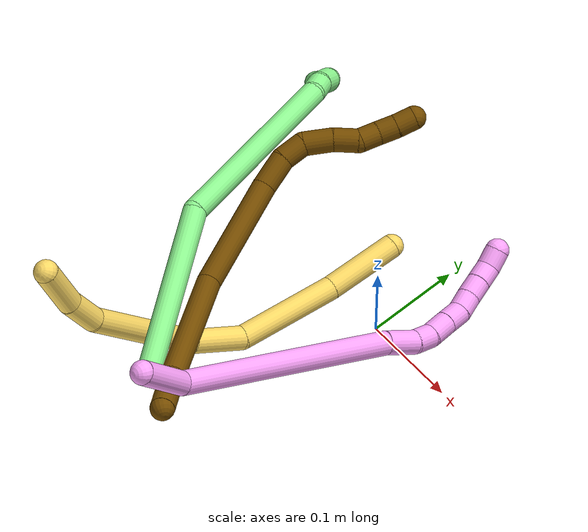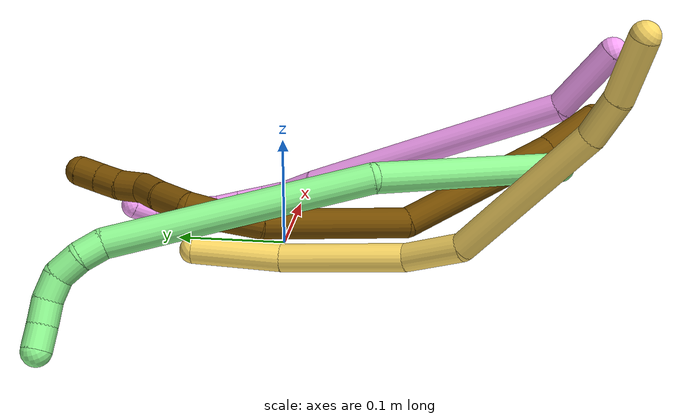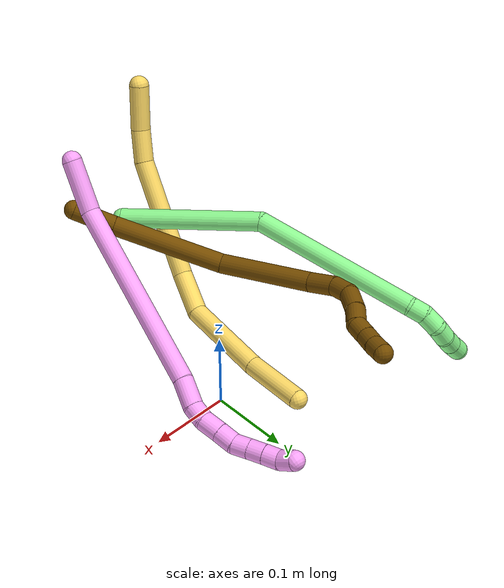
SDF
<sdf version="1.7">
 <world name="default">
  <model name="4">
   <static>0</static>
   <link name="4">
    <collision name="collision-cylinder-e_1_1_4">
     <pose>-0.010887 -0.010721 -0.030058 2.79899 -0.328781 -1.52884</pose>
     <geometry><cylinder><radius>0.0125</radius><length>0.067436</length></cylinder></geometry>
     <surface>
      <friction><ode><mu>1.16</mu><mu2>1.16</mu2><slip1>0</slip1><slip2>0</slip2></ode></friction>
      <contact><ode><kp>1e+06</kp><kd>1</kd><max_vel>0</max_vel><min_depth>0.001</min_depth></ode></contact>
     </surface>
    </collision>
    <visual name="visual-cylinder-e_1_1_4">
     <pose>-0.010887 -0.010721 -0.030058 2.79899 -0.328781 -1.52884</pose>
     <geometry><cylinder><radius>0.0125</radius><length>0.067436</length></cylinder></geometry>
     <material><ambient>1 0.65098 0.996078 1</ambient></material>
    </visual>
    <collision name="collision-cylinder-e_2_4_5">
     <pose>-0.0119 -0.029822 -0.183662 3.07386 0.079571 1.73135</pose>
     <geometry><cylinder><radius>0.0125</radius><length>0.248449</length></cylinder></geometry>
     <surface>
      <friction><ode><mu>1.16</mu><mu2>1.16</mu2><slip1>0</slip1><slip2>0</slip2></ode></friction>
      <contact><ode><kp>1e+06</kp><kd>1</kd><max_vel>0</max_vel><min_depth>0.001</min_depth></ode></contact>
     </surface>
    </collision>
    <visual name="visual-cylinder-e_2_4_5">
     <pose>-0.0119 -0.029822 -0.183662 3.07386 0.079571 1.73135</pose>
     <geometry><cylinder><radius>0.0125</radius><length>0.248449</length></cylinder></geometry>
     <material><ambient>1 0.65098 0.996078 1</ambient></material>
    </visual>
    <collision name="collision-cylinder-e_3_5_6">
     <pose>-0.000458 -0.041844 -0.324581 2.935 0.088127 0.804312</pose>
     <geometry><cylinder><radius>0.0125</radius><length>0.035636</length></cylinder></geometry>
     <surface>
      <friction><ode><mu>1.16</mu><mu2>1.16</mu2><slip1>0</slip1><slip2>0</slip2></ode></friction>
      <contact><ode><kp>1e+06</kp><kd>1</kd><max_vel>0</max_vel><min_depth>0.001</min_depth></ode></contact>
     </surface>
    </collision>
    <visual name="visual-cylinder-e_3_5_6">
     <pose>-0.000458 -0.041844 -0.324581 2.935 0.088127 0.804312</pose>
     <geometry><cylinder><radius>0.0125</radius><length>0.035636</length></cylinder></geometry>
     <material><ambient>1 0.65098 0.996078 1</ambient></material>
    </visual>
    <collision name="collision-cylinder-e_4_6_7">
     <pose>0.002196 -0.044536 -0.352341 -3.05053 0.103728 -1.70081</pose>
     <geometry><cylinder><radius>0.0125</radius><length>0.020975</length></cylinder></geometry>
     <surface>
      <friction><ode><mu>1.16</mu><mu2>1.16</mu2><slip1>0</slip1><slip2>0</slip2></ode></friction>
      <contact><ode><kp>1e+06</kp><kd>1</kd><max_vel>0</max_vel><min_depth>0.001</min_depth></ode></contact>
     </surface>
    </collision>
    <visual name="visual-cylinder-e_4_6_7">
     <pose>0.002196 -0.044536 -0.352341 -3.05053 0.103728 -1.70081</pose>
     <geometry><cylinder><radius>0.0125</radius><length>0.020975</length></cylinder></geometry>
     <material><ambient>1 0.65098 0.996078 1</ambient></material>
    </visual>
    <collision name="collision-cylinder-e_5_7_8">
     <pose>0.003554 -0.039564 -0.374401 -2.80967 0.022036 -0.131374</pose>
     <geometry><cylinder><radius>0.0125</radius><length>0.024698</length></cylinder></geometry>
     <surface>
      <friction><ode><mu>1.16</mu><mu2>1.16</mu2><slip1>0</slip1><slip2>0</slip2></ode></friction>
      <contact><ode><kp>1e+06</kp><kd>1</kd><max_vel>0</max_vel><min_depth>0.001</min_depth></ode></contact>
     </surface>
    </collision>
    <visual name="visual-cylinder-e_5_7_8">
     <pose>0.003554 -0.039564 -0.374401 -2.80967 0.022036 -0.131374</pose>
     <geometry><cylinder><radius>0.0125</radius><length>0.024698</length></cylinder></geometry>
     <material><ambient>1 0.65098 0.996078 1</ambient></material>
    </visual>
    <collision name="collision-cylinder-e_6_8_9">
     <pose>0.00405 -0.03216 -0.396709 -2.83381 0.020064 -0.129172</pose>
     <geometry><cylinder><radius>0.0125</radius><length>0.022324</length></cylinder></geometry>
     <surface>
      <friction><ode><mu>1.16</mu><mu2>1.16</mu2><slip1>0</slip1><slip2>0</slip2></ode></friction>
      <contact><ode><kp>1e+06</kp><kd>1</kd><max_vel>0</max_vel><min_depth>0.001</min_depth></ode></contact>
     </surface>
    </collision>
    <visual name="visual-cylinder-e_6_8_9">
     <pose>0.00405 -0.03216 -0.396709 -2.83381 0.020064 -0.129172</pose>
     <geometry><cylinder><radius>0.0125</radius><length>0.022324</length></cylinder></geometry>
     <material><ambient>1 0.65098 0.996078 1</ambient></material>
    </visual>
    <collision name="collision-cylinder-e_7_9_10">
     <pose>0.004694 -0.022697 -0.415469 -2.499 0.041338 -0.12406</pose>
     <geometry><cylinder><radius>0.0125</radius><length>0.020315</length></cylinder></geometry>
     <surface>
      <friction><ode><mu>1.16</mu><mu2>1.16</mu2><slip1>0</slip1><slip2>0</slip2></ode></friction>
      <contact><ode><kp>1e+06</kp><kd>1</kd><max_vel>0</max_vel><min_depth>0.001</min_depth></ode></contact>
     </surface>
    </collision>
    <visual name="visual-cylinder-e_7_9_10">
     <pose>0.004694 -0.022697 -0.415469 -2.499 0.041338 -0.12406</pose>
     <geometry><cylinder><radius>0.0125</radius><length>0.020315</length></cylinder></geometry>
     <material><ambient>1 0.65098 0.996078 1</ambient></material>
    </visual>
    <collision name="collision-cylinder-e_8_10_11">
     <pose>0.006197 -0.01069 -0.431677 -2.50899 0.107691 -0.326427</pose>
     <geometry><cylinder><radius>0.0125</radius><length>0.020162</length></cylinder></geometry>
     <surface>
      <friction><ode><mu>1.16</mu><mu2>1.16</mu2><slip1>0</slip1><slip2>0</slip2></ode></friction>
      <contact><ode><kp>1e+06</kp><kd>1</kd><max_vel>0</max_vel><min_depth>0.001</min_depth></ode></contact>
     </surface>
    </collision>
    <visual name="visual-cylinder-e_8_10_11">
     <pose>0.006197 -0.01069 -0.431677 -2.50899 0.107691 -0.326427</pose>
     <geometry><cylinder><radius>0.0125</radius><length>0.020162</length></cylinder></geometry>
     <material><ambient>1 0.65098 0.996078 1</ambient></material>
    </visual>
    <collision name="collision-cylinder-e_9_11_12">
     <pose>0.008098 0.000969 -0.447913 -2.52875 0.081751 -0.25711</pose>
     <geometry><cylinder><radius>0.0125</radius><length>0.020001</length></cylinder></geometry>
     <surface>
      <friction><ode><mu>1.16</mu><mu2>1.16</mu2><slip1>0</slip1><slip2>0</slip2></ode></friction>
      <contact><ode><kp>1e+06</kp><kd>1</kd><max_vel>0</max_vel><min_depth>0.001</min_depth></ode></contact>
     </surface>
    </collision>
    <visual name="visual-cylinder-e_9_11_12">
     <pose>0.008098 0.000969 -0.447913 -2.52875 0.081751 -0.25711</pose>
     <geometry><cylinder><radius>0.0125</radius><length>0.020001</length></cylinder></geometry>
     <material><ambient>1 0.65098 0.996078 1</ambient></material>
    </visual>
    <collision name="collision-cylinder-e_10_12_2">
     <pose>0.012447 0.014094 -0.461804 -2.23084 0.361027 -0.713463</pose>
     <geometry><cylinder><radius>0.0125</radius><length>0.020002</length></cylinder></geometry>
     <surface>
      <friction><ode><mu>1.16</mu><mu2>1.16</mu2><slip1>0</slip1><slip2>0</slip2></ode></friction>
      <contact><ode><kp>1e+06</kp><kd>1</kd><max_vel>0</max_vel><min_depth>0.001</min_depth></ode></contact>
     </surface>
    </collision>
    <visual name="visual-cylinder-e_10_12_2">
     <pose>0.012447 0.014094 -0.461804 -2.23084 0.361027 -0.713463</pose>
     <geometry><cylinder><radius>0.0125</radius><length>0.020002</length></cylinder></geometry>
     <material><ambient>1 0.65098 0.996078 1</ambient></material>
    </visual>
    <collision name="collision-sphere-2">
     <pose>0.01598 0.021485 -0.467541 0 -0 0</pose>
     <geometry><sphere><radius>0.0125</radius></sphere></geometry>
     <surface>
      <friction><ode><mu>1.16</mu><mu2>1.16</mu2><slip1>0</slip1><slip2>0</slip2></ode></friction>
      <contact><ode><kp>1e+06</kp><kd>1</kd><max_vel>0</max_vel><min_depth>0.001</min_depth></ode></contact>
     </surface>
    </collision>
    <visual name="visual-sphere-2">
     <pose>0.01598 0.021485 -0.467541 0 -0 0</pose>
     <geometry><sphere><radius>0.0125</radius></sphere></geometry>
     <material><ambient>1 0.65098 0.996078 1</ambient></material>
    </visual>
    <collision name="collision-sphere-12">
     <pose>0.008914 0.006703 -0.456067 0 -0 0</pose>
     <geometry><sphere><radius>0.0125</radius></sphere></geometry>
     <surface>
      <friction><ode><mu>1.16</mu><mu2>1.16</mu2><slip1>0</slip1><slip2>0</slip2></ode></friction>
      <contact><ode><kp>1e+06</kp><kd>1</kd><max_vel>0</max_vel><min_depth>0.001</min_depth></ode></contact>
     </surface>
    </collision>
    <visual name="visual-sphere-12">
     <pose>0.008914 0.006703 -0.456067 0 -0 0</pose>
     <geometry><sphere><radius>0.0125</radius></sphere></geometry>
     <material><ambient>1 0.65098 0.996078 1</ambient></material>
    </visual>
    <collision name="collision-sphere-11">
     <pose>0.007281 -0.004764 -0.43976 0 -0 0</pose>
     <geometry><sphere><radius>0.0125</radius></sphere></geometry>
     <surface>
      <friction><ode><mu>1.16</mu><mu2>1.16</mu2><slip1>0</slip1><slip2>0</slip2></ode></friction>
      <contact><ode><kp>1e+06</kp><kd>1</kd><max_vel>0</max_vel><min_depth>0.001</min_depth></ode></contact>
     </surface>
    </collision>
    <visual name="visual-sphere-11">
     <pose>0.007281 -0.004764 -0.43976 0 -0 0</pose>
     <geometry><sphere><radius>0.0125</radius></sphere></geometry>
     <material><ambient>1 0.65098 0.996078 1</ambient></material>
    </visual>
    <collision name="collision-sphere-10">
     <pose>0.005114 -0.016615 -0.423594 0 -0 0</pose>
     <geometry><sphere><radius>0.0125</radius></sphere></geometry>
     <surface>
      <friction><ode><mu>1.16</mu><mu2>1.16</mu2><slip1>0</slip1><slip2>0</slip2></ode></friction>
      <contact><ode><kp>1e+06</kp><kd>1</kd><max_vel>0</max_vel><min_depth>0.001</min_depth></ode></contact>
     </surface>
    </collision>
    <visual name="visual-sphere-10">
     <pose>0.005114 -0.016615 -0.423594 0 -0 0</pose>
     <geometry><sphere><radius>0.0125</radius></sphere></geometry>
     <material><ambient>1 0.65098 0.996078 1</ambient></material>
    </visual>
    <collision name="collision-sphere-9">
     <pose>0.004274 -0.028779 -0.407344 0 -0 0</pose>
     <geometry><sphere><radius>0.0125</radius></sphere></geometry>
     <surface>
      <friction><ode><mu>1.16</mu><mu2>1.16</mu2><slip1>0</slip1><slip2>0</slip2></ode></friction>
      <contact><ode><kp>1e+06</kp><kd>1</kd><max_vel>0</max_vel><min_depth>0.001</min_depth></ode></contact>
     </surface>
    </collision>
    <visual name="visual-sphere-9">
     <pose>0.004274 -0.028779 -0.407344 0 -0 0</pose>
     <geometry><sphere><radius>0.0125</radius></sphere></geometry>
     <material><ambient>1 0.65098 0.996078 1</ambient></material>
    </visual>
    <collision name="collision-sphere-4">
     <pose>-0.021775 -0.021441 -0.060115 0 -0 0</pose>
     <geometry><sphere><radius>0.0125</radius></sphere></geometry>
     <surface>
      <friction><ode><mu>1.16</mu><mu2>1.16</mu2><slip1>0</slip1><slip2>0</slip2></ode></friction>
      <contact><ode><kp>1e+06</kp><kd>1</kd><max_vel>0</max_vel><min_depth>0.001</min_depth></ode></contact>
     </surface>
    </collision>
    <visual name="visual-sphere-4">
     <pose>-0.021775 -0.021441 -0.060115 0 -0 0</pose>
     <geometry><sphere><radius>0.0125</radius></sphere></geometry>
     <material><ambient>1 0.65098 0.996078 1</ambient></material>
    </visual>
    <collision name="collision-sphere-1">
     <geometry><sphere><radius>0.0125</radius></sphere></geometry>
     <surface>
      <friction><ode><mu>1.16</mu><mu2>1.16</mu2><slip1>0</slip1><slip2>0</slip2></ode></friction>
      <contact><ode><kp>1e+06</kp><kd>1</kd><max_vel>0</max_vel><min_depth>0.001</min_depth></ode></contact>
     </surface>
    </collision>
    <visual name="visual-sphere-1">
     <geometry><sphere><radius>0.0125</radius></sphere></geometry>
     <material><ambient>1 0.65098 0.996078 1</ambient></material>
    </visual>
    <collision name="collision-sphere-8">
     <pose>0.003827 -0.035541 -0.386074 0 -0 0</pose>
     <geometry><sphere><radius>0.0125</radius></sphere></geometry>
     <surface>
      <friction><ode><mu>1.16</mu><mu2>1.16</mu2><slip1>0</slip1><slip2>0</slip2></ode></friction>
      <contact><ode><kp>1e+06</kp><kd>1</kd><max_vel>0</max_vel><min_depth>0.001</min_depth></ode></contact>
     </surface>
    </collision>
    <visual name="visual-sphere-8">
     <pose>0.003827 -0.035541 -0.386074 0 -0 0</pose>
     <geometry><sphere><radius>0.0125</radius></sphere></geometry>
     <material><ambient>1 0.65098 0.996078 1</ambient></material>
    </visual>
    <collision name="collision-sphere-5">
     <pose>-0.002026 -0.038203 -0.30721 0 -0 0</pose>
     <geometry><sphere><radius>0.0125</radius></sphere></geometry>
     <surface>
      <friction><ode><mu>1.16</mu><mu2>1.16</mu2><slip1>0</slip1><slip2>0</slip2></ode></friction>
      <contact><ode><kp>1e+06</kp><kd>1</kd><max_vel>0</max_vel><min_depth>0.001</min_depth></ode></contact>
     </surface>
    </collision>
    <visual name="visual-sphere-5">
     <pose>-0.002026 -0.038203 -0.30721 0 -0 0</pose>
     <geometry><sphere><radius>0.0125</radius></sphere></geometry>
     <material><ambient>1 0.65098 0.996078 1</ambient></material>
    </visual>
    <collision name="collision-sphere-6">
     <pose>0.001111 -0.045484 -0.341953 0 -0 0</pose>
     <geometry><sphere><radius>0.0125</radius></sphere></geometry>
     <surface>
      <friction><ode><mu>1.16</mu><mu2>1.16</mu2><slip1>0</slip1><slip2>0</slip2></ode></friction>
      <contact><ode><kp>1e+06</kp><kd>1</kd><max_vel>0</max_vel><min_depth>0.001</min_depth></ode></contact>
     </surface>
    </collision>
    <visual name="visual-sphere-6">
     <pose>0.001111 -0.045484 -0.341953 0 -0 0</pose>
     <geometry><sphere><radius>0.0125</radius></sphere></geometry>
     <material><ambient>1 0.65098 0.996078 1</ambient></material>
    </visual>
    <collision name="collision-sphere-7">
     <pose>0.003282 -0.043587 -0.362729 0 -0 0</pose>
     <geometry><sphere><radius>0.0125</radius></sphere></geometry>
     <surface>
      <friction><ode><mu>1.16</mu><mu2>1.16</mu2><slip1>0</slip1><slip2>0</slip2></ode></friction>
      <contact><ode><kp>1e+06</kp><kd>1</kd><max_vel>0</max_vel><min_depth>0.001</min_depth></ode></contact>
     </surface>
    </collision>
    <visual name="visual-sphere-7">
     <pose>0.003282 -0.043587 -0.362729 0 -0 0</pose>
     <geometry><sphere><radius>0.0125</radius></sphere></geometry>
     <material><ambient>1 0.65098 0.996078 1</ambient></material>
    </visual>
    <inertial>
     <pose>-0.005703 -0.025256 -0.240116 0 -0 0</pose>
     <mass>0.5</mass>
     <inertia><ixx>0.00105</ixx><ixy>0</ixy><ixz>0</ixz><iyy>0.001445</iyy><iyz>0</iyz><izz>-4e-05</izz></inertia>
    </inertial>
   </link>
   <pose>-0.020077 -0.285809 0.197625 0.904412 -0.813708 0.408041</pose>
  </model>
  <model name="5">
   <static>0</static>
   <link name="5">
    <collision name="collision-cylinder-e_1_1_4">
     <pose>0.00179 -0.01063 -0.02643 2.75921 0.062744 0.321475</pose>
     <geometry><cylinder><radius>0.0125</radius><length>0.057088</length></cylinder></geometry>
     <surface>
      <friction><ode><mu>1.16</mu><mu2>1.16</mu2><slip1>0</slip1><slip2>0</slip2></ode></friction>
      <contact><ode><kp>1e+06</kp><kd>1</kd><max_vel>0</max_vel><min_depth>0.001</min_depth></ode></contact>
     </surface>
    </collision>
    <visual name="visual-cylinder-e_1_1_4">
     <pose>0.00179 -0.01063 -0.02643 2.75921 0.062744 0.321475</pose>
     <geometry><cylinder><radius>0.0125</radius><length>0.057088</length></cylinder></geometry>
     <material><ambient>1 0.858824 0.4 1</ambient></material>
    </visual>
    <collision name="collision-cylinder-e_2_4_5">
     <pose>0.006028 -0.025174 -0.073227 2.95171 0.117496 1.10655</pose>
     <geometry><cylinder><radius>0.0125</radius><length>0.041766</length></cylinder></geometry>
     <surface>
      <friction><ode><mu>1.16</mu><mu2>1.16</mu2><slip1>0</slip1><slip2>0</slip2></ode></friction>
      <contact><ode><kp>1e+06</kp><kd>1</kd><max_vel>0</max_vel><min_depth>0.001</min_depth></ode></contact>
     </surface>
    </collision>
    <visual name="visual-cylinder-e_2_4_5">
     <pose>0.006028 -0.025174 -0.073227 2.95171 0.117496 1.10655</pose>
     <geometry><cylinder><radius>0.0125</radius><length>0.041766</length></cylinder></geometry>
     <material><ambient>1 0.858824 0.4 1</ambient></material>
    </visual>
    <collision name="collision-cylinder-e_3_5_6">
     <pose>0.009022 -0.024655 -0.169612 -3.08334 0.007178 -0.24515</pose>
     <geometry><cylinder><radius>0.0125</radius><length>0.1523</length></cylinder></geometry>
     <surface>
      <friction><ode><mu>1.16</mu><mu2>1.16</mu2><slip1>0</slip1><slip2>0</slip2></ode></friction>
      <contact><ode><kp>1e+06</kp><kd>1</kd><max_vel>0</max_vel><min_depth>0.001</min_depth></ode></contact>
     </surface>
    </collision>
    <visual name="visual-cylinder-e_3_5_6">
     <pose>0.009022 -0.024655 -0.169612 -3.08334 0.007178 -0.24515</pose>
     <geometry><cylinder><radius>0.0125</radius><length>0.1523</length></cylinder></geometry>
     <material><ambient>1 0.858824 0.4 1</ambient></material>
    </visual>
    <collision name="collision-cylinder-e_4_6_7">
     <pose>0.015756 -0.007509 -0.270374 -2.66696 0.218839 -0.852672</pose>
     <geometry><cylinder><radius>0.0125</radius><length>0.056996</length></cylinder></geometry>
     <surface>
      <friction><ode><mu>1.16</mu><mu2>1.16</mu2><slip1>0</slip1><slip2>0</slip2></ode></friction>
      <contact><ode><kp>1e+06</kp><kd>1</kd><max_vel>0</max_vel><min_depth>0.001</min_depth></ode></contact>
     </surface>
    </collision>
    <visual name="visual-cylinder-e_4_6_7">
     <pose>0.015756 -0.007509 -0.270374 -2.66696 0.218839 -0.852672</pose>
     <geometry><cylinder><radius>0.0125</radius><length>0.056996</length></cylinder></geometry>
     <material><ambient>1 0.858824 0.4 1</ambient></material>
    </visual>
    <collision name="collision-cylinder-e_5_7_8">
     <pose>0.021157 0.045808 -0.333632 -2.32981 -0.014033 0.032651</pose>
     <geometry><cylinder><radius>0.0125</radius><length>0.11194</length></cylinder></geometry>
     <surface>
      <friction><ode><mu>1.16</mu><mu2>1.16</mu2><slip1>0</slip1><slip2>0</slip2></ode></friction>
      <contact><ode><kp>1e+06</kp><kd>1</kd><max_vel>0</max_vel><min_depth>0.001</min_depth></ode></contact>
     </surface>
    </collision>
    <visual name="visual-cylinder-e_5_7_8">
     <pose>0.021157 0.045808 -0.333632 -2.32981 -0.014033 0.032651</pose>
     <geometry><cylinder><radius>0.0125</radius><length>0.11194</length></cylinder></geometry>
     <material><ambient>1 0.858824 0.4 1</ambient></material>
    </visual>
    <collision name="collision-cylinder-e_6_8_2">
     <pose>0.01919 0.118492 -0.395934 -2.20879 -0.029583 0.058749</pose>
     <geometry><cylinder><radius>0.0125</radius><length>0.079911</length></cylinder></geometry>
     <surface>
      <friction><ode><mu>1.16</mu><mu2>1.16</mu2><slip1>0</slip1><slip2>0</slip2></ode></friction>
      <contact><ode><kp>1e+06</kp><kd>1</kd><max_vel>0</max_vel><min_depth>0.001</min_depth></ode></contact>
     </surface>
    </collision>
    <visual name="visual-cylinder-e_6_8_2">
     <pose>0.01919 0.118492 -0.395934 -2.20879 -0.029583 0.058749</pose>
     <geometry><cylinder><radius>0.0125</radius><length>0.079911</length></cylinder></geometry>
     <material><ambient>1 0.858824 0.4 1</ambient></material>
    </visual>
    <collision name="collision-sphere-2">
     <pose>0.018008 0.150574 -0.419721 0 -0 0</pose>
     <geometry><sphere><radius>0.0125</radius></sphere></geometry>
     <surface>
      <friction><ode><mu>1.16</mu><mu2>1.16</mu2><slip1>0</slip1><slip2>0</slip2></ode></friction>
      <contact><ode><kp>1e+06</kp><kd>1</kd><max_vel>0</max_vel><min_depth>0.001</min_depth></ode></contact>
     </surface>
    </collision>
    <visual name="visual-sphere-2">
     <pose>0.018008 0.150574 -0.419721 0 -0 0</pose>
     <geometry><sphere><radius>0.0125</radius></sphere></geometry>
     <material><ambient>1 0.858824 0.4 1</ambient></material>
    </visual>
    <collision name="collision-sphere-4">
     <pose>0.00358 -0.021259 -0.052861 0 -0 0</pose>
     <geometry><sphere><radius>0.0125</radius></sphere></geometry>
     <surface>
      <friction><ode><mu>1.16</mu><mu2>1.16</mu2><slip1>0</slip1><slip2>0</slip2></ode></friction>
      <contact><ode><kp>1e+06</kp><kd>1</kd><max_vel>0</max_vel><min_depth>0.001</min_depth></ode></contact>
     </surface>
    </collision>
    <visual name="visual-sphere-4">
     <pose>0.00358 -0.021259 -0.052861 0 -0 0</pose>
     <geometry><sphere><radius>0.0125</radius></sphere></geometry>
     <material><ambient>1 0.858824 0.4 1</ambient></material>
    </visual>
    <collision name="collision-sphere-1">
     <geometry><sphere><radius>0.0125</radius></sphere></geometry>
     <surface>
      <friction><ode><mu>1.16</mu><mu2>1.16</mu2><slip1>0</slip1><slip2>0</slip2></ode></friction>
      <contact><ode><kp>1e+06</kp><kd>1</kd><max_vel>0</max_vel><min_depth>0.001</min_depth></ode></contact>
     </surface>
    </collision>
    <visual name="visual-sphere-1">
     <geometry><sphere><radius>0.0125</radius></sphere></geometry>
     <material><ambient>1 0.858824 0.4 1</ambient></material>
    </visual>
    <collision name="collision-sphere-8">
     <pose>0.020372 0.086411 -0.372147 0 -0 0</pose>
     <geometry><sphere><radius>0.0125</radius></sphere></geometry>
     <surface>
      <friction><ode><mu>1.16</mu><mu2>1.16</mu2><slip1>0</slip1><slip2>0</slip2></ode></friction>
      <contact><ode><kp>1e+06</kp><kd>1</kd><max_vel>0</max_vel><min_depth>0.001</min_depth></ode></contact>
     </surface>
    </collision>
    <visual name="visual-sphere-8">
     <pose>0.020372 0.086411 -0.372147 0 -0 0</pose>
     <geometry><sphere><radius>0.0125</radius></sphere></geometry>
     <material><ambient>1 0.858824 0.4 1</ambient></material>
    </visual>
    <collision name="collision-sphere-5">
     <pose>0.008476 -0.029088 -0.093593 0 -0 0</pose>
     <geometry><sphere><radius>0.0125</radius></sphere></geometry>
     <surface>
      <friction><ode><mu>1.16</mu><mu2>1.16</mu2><slip1>0</slip1><slip2>0</slip2></ode></friction>
      <contact><ode><kp>1e+06</kp><kd>1</kd><max_vel>0</max_vel><min_depth>0.001</min_depth></ode></contact>
     </surface>
    </collision>
    <visual name="visual-sphere-5">
     <pose>0.008476 -0.029088 -0.093593 0 -0 0</pose>
     <geometry><sphere><radius>0.0125</radius></sphere></geometry>
     <material><ambient>1 0.858824 0.4 1</ambient></material>
    </visual>
    <collision name="collision-sphere-6">
     <pose>0.009569 -0.020222 -0.245631 0 -0 0</pose>
     <geometry><sphere><radius>0.0125</radius></sphere></geometry>
     <surface>
      <friction><ode><mu>1.16</mu><mu2>1.16</mu2><slip1>0</slip1><slip2>0</slip2></ode></friction>
      <contact><ode><kp>1e+06</kp><kd>1</kd><max_vel>0</max_vel><min_depth>0.001</min_depth></ode></contact>
     </surface>
    </collision>
    <visual name="visual-sphere-6">
     <pose>0.009569 -0.020222 -0.245631 0 -0 0</pose>
     <geometry><sphere><radius>0.0125</radius></sphere></geometry>
     <material><ambient>1 0.858824 0.4 1</ambient></material>
    </visual>
    <collision name="collision-sphere-7">
     <pose>0.021942 0.005205 -0.295117 0 -0 0</pose>
     <geometry><sphere><radius>0.0125</radius></sphere></geometry>
     <surface>
      <friction><ode><mu>1.16</mu><mu2>1.16</mu2><slip1>0</slip1><slip2>0</slip2></ode></friction>
      <contact><ode><kp>1e+06</kp><kd>1</kd><max_vel>0</max_vel><min_depth>0.001</min_depth></ode></contact>
     </surface>
    </collision>
    <visual name="visual-sphere-7">
     <pose>0.021942 0.005205 -0.295117 0 -0 0</pose>
     <geometry><sphere><radius>0.0125</radius></sphere></geometry>
     <material><ambient>1 0.858824 0.4 1</ambient></material>
    </visual>
    <inertial>
     <pose>0.013056 0.017511 -0.229591 0 -0 0</pose>
     <mass>0.5</mass>
     <inertia>
      <ixx>0.000424</ixx>
      <ixy>0</ixy>
      <ixz>0</ixz>
      <iyy>-0.000484</iyy>
      <iyz>0</iyz>
      <izz>-0.00018</izz>
     </inertia>
    </inertial>
   </link>
   <pose>-0.145066 -0.300245 0.243135 0.668954 -0.166978 -0.079333</pose>
  </model>
  <model name="12">
   <static>0</static>
   <link name="12">
    <collision name="collision-cylinder-e_1_1_4">
     <pose>-0.010339 0.006979 0.023636 -0.287104 -0.397204 0.058165</pose>
     <geometry><cylinder><radius>0.0125</radius><length>0.053451</length></cylinder></geometry>
     <surface>
      <friction><ode><mu>1.16</mu><mu2>1.16</mu2><slip1>0</slip1><slip2>0</slip2></ode></friction>
      <contact><ode><kp>1e+06</kp><kd>1</kd><max_vel>0</max_vel><min_depth>0.001</min_depth></ode></contact>
     </surface>
    </collision>
    <visual name="visual-cylinder-e_1_1_4">
     <pose>-0.010339 0.006979 0.023636 -0.287104 -0.397204 0.058165</pose>
     <geometry><cylinder><radius>0.0125</radius><length>0.053451</length></cylinder></geometry>
     <material><ambient>0.466667 0.301961 0 1</ambient></material>
    </visual>
    <collision name="collision-cylinder-e_2_4_5">
     <pose>-0.043238 0.038996 0.110924 -0.374777 -0.318598 0.060908</pose>
     <geometry><cylinder><radius>0.0125</radius><length>0.144047</length></cylinder></geometry>
     <surface>
      <friction><ode><mu>1.16</mu><mu2>1.16</mu2><slip1>0</slip1><slip2>0</slip2></ode></friction>
      <contact><ode><kp>1e+06</kp><kd>1</kd><max_vel>0</max_vel><min_depth>0.001</min_depth></ode></contact>
     </surface>
    </collision>
    <visual name="visual-cylinder-e_2_4_5">
     <pose>-0.043238 0.038996 0.110924 -0.374777 -0.318598 0.060908</pose>
     <geometry><cylinder><radius>0.0125</radius><length>0.144047</length></cylinder></geometry>
     <material><ambient>0.466667 0.301961 0 1</ambient></material>
    </visual>
    <collision name="collision-cylinder-e_3_5_6">
     <pose>-0.065512 0.102794 0.221582 -0.689529 0.004698 -0.001687</pose>
     <geometry><cylinder><radius>0.0125</radius><length>0.121852</length></cylinder></geometry>
     <surface>
      <friction><ode><mu>1.16</mu><mu2>1.16</mu2><slip1>0</slip1><slip2>0</slip2></ode></friction>
      <contact><ode><kp>1e+06</kp><kd>1</kd><max_vel>0</max_vel><min_depth>0.001</min_depth></ode></contact>
     </surface>
    </collision>
    <visual name="visual-cylinder-e_3_5_6">
     <pose>-0.065512 0.102794 0.221582 -0.689529 0.004698 -0.001687</pose>
     <geometry><cylinder><radius>0.0125</radius><length>0.121852</length></cylinder></geometry>
     <material><ambient>0.466667 0.301961 0 1</ambient></material>
    </visual>
    <collision name="collision-cylinder-e_4_6_7">
     <pose>-0.062842 0.154564 0.28026 -0.839633 0.135535 -0.060571</pose>
     <geometry><cylinder><radius>0.0125</radius><length>0.035281</length></cylinder></geometry>
     <surface>
      <friction><ode><mu>1.16</mu><mu2>1.16</mu2><slip1>0</slip1><slip2>0</slip2></ode></friction>
      <contact><ode><kp>1e+06</kp><kd>1</kd><max_vel>0</max_vel><min_depth>0.001</min_depth></ode></contact>
     </surface>
    </collision>
    <visual name="visual-cylinder-e_4_6_7">
     <pose>-0.062842 0.154564 0.28026 -0.839633 0.135535 -0.060571</pose>
     <geometry><cylinder><radius>0.0125</radius><length>0.035281</length></cylinder></geometry>
     <material><ambient>0.466667 0.301961 0 1</ambient></material>
    </visual>
    <collision name="collision-cylinder-e_5_7_8">
     <pose>-0.060175 0.179487 0.297123 -1.15974 0.021794 -0.014275</pose>
     <geometry><cylinder><radius>0.0125</radius><length>0.025994</length></cylinder></geometry>
     <surface>
      <friction><ode><mu>1.16</mu><mu2>1.16</mu2><slip1>0</slip1><slip2>0</slip2></ode></friction>
      <contact><ode><kp>1e+06</kp><kd>1</kd><max_vel>0</max_vel><min_depth>0.001</min_depth></ode></contact>
     </surface>
    </collision>
    <visual name="visual-cylinder-e_5_7_8">
     <pose>-0.060175 0.179487 0.297123 -1.15974 0.021794 -0.014275</pose>
     <geometry><cylinder><radius>0.0125</radius><length>0.025994</length></cylinder></geometry>
     <material><ambient>0.466667 0.301961 0 1</ambient></material>
    </visual>
    <collision name="collision-cylinder-e_6_8_9">
     <pose>-0.0627 0.206668 0.301382 -1.63182 -0.181553 0.192916</pose>
     <geometry><cylinder><radius>0.0125</radius><length>0.031107</length></cylinder></geometry>
     <surface>
      <friction><ode><mu>1.16</mu><mu2>1.16</mu2><slip1>0</slip1><slip2>0</slip2></ode></friction>
      <contact><ode><kp>1e+06</kp><kd>1</kd><max_vel>0</max_vel><min_depth>0.001</min_depth></ode></contact>
     </surface>
    </collision>
    <visual name="visual-cylinder-e_6_8_9">
     <pose>-0.0627 0.206668 0.301382 -1.63182 -0.181553 0.192916</pose>
     <geometry><cylinder><radius>0.0125</radius><length>0.031107</length></cylinder></geometry>
     <material><ambient>0.466667 0.301961 0 1</ambient></material>
    </visual>
    <collision name="collision-cylinder-e_7_9_10">
     <pose>-0.068663 0.23432 0.297261 -1.82281 -0.241874 0.31104</pose>
     <geometry><cylinder><radius>0.0125</radius><length>0.026341</length></cylinder></geometry>
     <surface>
      <friction><ode><mu>1.16</mu><mu2>1.16</mu2><slip1>0</slip1><slip2>0</slip2></ode></friction>
      <contact><ode><kp>1e+06</kp><kd>1</kd><max_vel>0</max_vel><min_depth>0.001</min_depth></ode></contact>
     </surface>
    </collision>
    <visual name="visual-cylinder-e_7_9_10">
     <pose>-0.068663 0.23432 0.297261 -1.82281 -0.241874 0.31104</pose>
     <geometry><cylinder><radius>0.0125</radius><length>0.026341</length></cylinder></geometry>
     <material><ambient>0.466667 0.301961 0 1</ambient></material>
    </visual>
    <collision name="collision-cylinder-e_8_10_11">
     <pose>-0.074171 0.256652 0.296913 -1.29271 -0.223625 0.169021</pose>
     <geometry><cylinder><radius>0.0125</radius><length>0.021221</length></cylinder></geometry>
     <surface>
      <friction><ode><mu>1.16</mu><mu2>1.16</mu2><slip1>0</slip1><slip2>0</slip2></ode></friction>
      <contact><ode><kp>1e+06</kp><kd>1</kd><max_vel>0</max_vel><min_depth>0.001</min_depth></ode></contact>
     </surface>
    </collision>
    <visual name="visual-cylinder-e_8_10_11">
     <pose>-0.074171 0.256652 0.296913 -1.29271 -0.223625 0.169021</pose>
     <geometry><cylinder><radius>0.0125</radius><length>0.021221</length></cylinder></geometry>
     <material><ambient>0.466667 0.301961 0 1</ambient></material>
    </visual>
    <collision name="collision-cylinder-e_9_11_12">
     <pose>-0.07736 0.276626 0.301254 -1.42217 -0.082277 0.070885</pose>
     <geometry><cylinder><radius>0.0125</radius><length>0.020341</length></cylinder></geometry>
     <surface>
      <friction><ode><mu>1.16</mu><mu2>1.16</mu2><slip1>0</slip1><slip2>0</slip2></ode></friction>
      <contact><ode><kp>1e+06</kp><kd>1</kd><max_vel>0</max_vel><min_depth>0.001</min_depth></ode></contact>
     </surface>
    </collision>
    <visual name="visual-cylinder-e_9_11_12">
     <pose>-0.07736 0.276626 0.301254 -1.42217 -0.082277 0.070885</pose>
     <geometry><cylinder><radius>0.0125</radius><length>0.020341</length></cylinder></geometry>
     <material><ambient>0.466667 0.301961 0 1</ambient></material>
    </visual>
    <collision name="collision-cylinder-e_10_12_2">
     <pose>-0.078496 0.296619 0.304805 -1.368 -0.029476 0.024033</pose>
     <geometry><cylinder><radius>0.0125</radius><length>0.020364</length></cylinder></geometry>
     <surface>
      <friction><ode><mu>1.16</mu><mu2>1.16</mu2><slip1>0</slip1><slip2>0</slip2></ode></friction>
      <contact><ode><kp>1e+06</kp><kd>1</kd><max_vel>0</max_vel><min_depth>0.001</min_depth></ode></contact>
     </surface>
    </collision>
    <visual name="visual-cylinder-e_10_12_2">
     <pose>-0.078496 0.296619 0.304805 -1.368 -0.029476 0.024033</pose>
     <geometry><cylinder><radius>0.0125</radius><length>0.020364</length></cylinder></geometry>
     <material><ambient>0.466667 0.301961 0 1</ambient></material>
    </visual>
    <collision name="collision-sphere-2">
     <pose>-0.078796 0.306588 0.306855 0 -0 0</pose>
     <geometry><sphere><radius>0.0125</radius></sphere></geometry>
     <surface>
      <friction><ode><mu>1.16</mu><mu2>1.16</mu2><slip1>0</slip1><slip2>0</slip2></ode></friction>
      <contact><ode><kp>1e+06</kp><kd>1</kd><max_vel>0</max_vel><min_depth>0.001</min_depth></ode></contact>
     </surface>
    </collision>
    <visual name="visual-sphere-2">
     <pose>-0.078796 0.306588 0.306855 0 -0 0</pose>
     <geometry><sphere><radius>0.0125</radius></sphere></geometry>
     <material><ambient>0.466667 0.301961 0 1</ambient></material>
    </visual>
    <collision name="collision-sphere-12">
     <pose>-0.078196 0.28665 0.302755 0 -0 0</pose>
     <geometry><sphere><radius>0.0125</radius></sphere></geometry>
     <surface>
      <friction><ode><mu>1.16</mu><mu2>1.16</mu2><slip1>0</slip1><slip2>0</slip2></ode></friction>
      <contact><ode><kp>1e+06</kp><kd>1</kd><max_vel>0</max_vel><min_depth>0.001</min_depth></ode></contact>
     </surface>
    </collision>
    <visual name="visual-sphere-12">
     <pose>-0.078196 0.28665 0.302755 0 -0 0</pose>
     <geometry><sphere><radius>0.0125</radius></sphere></geometry>
     <material><ambient>0.466667 0.301961 0 1</ambient></material>
    </visual>
    <collision name="collision-sphere-11">
     <pose>-0.076524 0.266601 0.299753 0 -0 0</pose>
     <geometry><sphere><radius>0.0125</radius></sphere></geometry>
     <surface>
      <friction><ode><mu>1.16</mu><mu2>1.16</mu2><slip1>0</slip1><slip2>0</slip2></ode></friction>
      <contact><ode><kp>1e+06</kp><kd>1</kd><max_vel>0</max_vel><min_depth>0.001</min_depth></ode></contact>
     </surface>
    </collision>
    <visual name="visual-sphere-11">
     <pose>-0.076524 0.266601 0.299753 0 -0 0</pose>
     <geometry><sphere><radius>0.0125</radius></sphere></geometry>
     <material><ambient>0.466667 0.301961 0 1</ambient></material>
    </visual>
    <collision name="collision-sphere-10">
     <pose>-0.071818 0.246704 0.294073 0 -0 0</pose>
     <geometry><sphere><radius>0.0125</radius></sphere></geometry>
     <surface>
      <friction><ode><mu>1.16</mu><mu2>1.16</mu2><slip1>0</slip1><slip2>0</slip2></ode></friction>
      <contact><ode><kp>1e+06</kp><kd>1</kd><max_vel>0</max_vel><min_depth>0.001</min_depth></ode></contact>
     </surface>
    </collision>
    <visual name="visual-sphere-10">
     <pose>-0.071818 0.246704 0.294073 0 -0 0</pose>
     <geometry><sphere><radius>0.0125</radius></sphere></geometry>
     <material><ambient>0.466667 0.301961 0 1</ambient></material>
    </visual>
    <collision name="collision-sphere-9">
     <pose>-0.065508 0.221937 0.30045 0 -0 0</pose>
     <geometry><sphere><radius>0.0125</radius></sphere></geometry>
     <surface>
      <friction><ode><mu>1.16</mu><mu2>1.16</mu2><slip1>0</slip1><slip2>0</slip2></ode></friction>
      <contact><ode><kp>1e+06</kp><kd>1</kd><max_vel>0</max_vel><min_depth>0.001</min_depth></ode></contact>
     </surface>
    </collision>
    <visual name="visual-sphere-9">
     <pose>-0.065508 0.221937 0.30045 0 -0 0</pose>
     <geometry><sphere><radius>0.0125</radius></sphere></geometry>
     <material><ambient>0.466667 0.301961 0 1</ambient></material>
    </visual>
    <collision name="collision-sphere-4">
     <pose>-0.020677 0.013958 0.047272 0 -0 0</pose>
     <geometry><sphere><radius>0.0125</radius></sphere></geometry>
     <surface>
      <friction><ode><mu>1.16</mu><mu2>1.16</mu2><slip1>0</slip1><slip2>0</slip2></ode></friction>
      <contact><ode><kp>1e+06</kp><kd>1</kd><max_vel>0</max_vel><min_depth>0.001</min_depth></ode></contact>
     </surface>
    </collision>
    <visual name="visual-sphere-4">
     <pose>-0.020677 0.013958 0.047272 0 -0 0</pose>
     <geometry><sphere><radius>0.0125</radius></sphere></geometry>
     <material><ambient>0.466667 0.301961 0 1</ambient></material>
    </visual>
    <collision name="collision-sphere-1">
     <geometry><sphere><radius>0.0125</radius></sphere></geometry>
     <surface>
      <friction><ode><mu>1.16</mu><mu2>1.16</mu2><slip1>0</slip1><slip2>0</slip2></ode></friction>
      <contact><ode><kp>1e+06</kp><kd>1</kd><max_vel>0</max_vel><min_depth>0.001</min_depth></ode></contact>
     </surface>
    </collision>
    <visual name="visual-sphere-1">
     <geometry><sphere><radius>0.0125</radius></sphere></geometry>
     <material><ambient>0.466667 0.301961 0 1</ambient></material>
    </visual>
    <collision name="collision-sphere-8">
     <pose>-0.059892 0.191398 0.302315 0 -0 0</pose>
     <geometry><sphere><radius>0.0125</radius></sphere></geometry>
     <surface>
      <friction><ode><mu>1.16</mu><mu2>1.16</mu2><slip1>0</slip1><slip2>0</slip2></ode></friction>
      <contact><ode><kp>1e+06</kp><kd>1</kd><max_vel>0</max_vel><min_depth>0.001</min_depth></ode></contact>
     </surface>
    </collision>
    <visual name="visual-sphere-8">
     <pose>-0.059892 0.191398 0.302315 0 -0 0</pose>
     <geometry><sphere><radius>0.0125</radius></sphere></geometry>
     <material><ambient>0.466667 0.301961 0 1</ambient></material>
    </visual>
    <collision name="collision-sphere-5">
     <pose>-0.065798 0.064035 0.174575 0 -0 0</pose>
     <geometry><sphere><radius>0.0125</radius></sphere></geometry>
     <surface>
      <friction><ode><mu>1.16</mu><mu2>1.16</mu2><slip1>0</slip1><slip2>0</slip2></ode></friction>
      <contact><ode><kp>1e+06</kp><kd>1</kd><max_vel>0</max_vel><min_depth>0.001</min_depth></ode></contact>
     </surface>
    </collision>
    <visual name="visual-sphere-5">
     <pose>-0.065798 0.064035 0.174575 0 -0 0</pose>
     <geometry><sphere><radius>0.0125</radius></sphere></geometry>
     <material><ambient>0.466667 0.301961 0 1</ambient></material>
    </visual>
    <collision name="collision-sphere-6">
     <pose>-0.065226 0.141553 0.268589 0 -0 0</pose>
     <geometry><sphere><radius>0.0125</radius></sphere></geometry>
     <surface>
      <friction><ode><mu>1.16</mu><mu2>1.16</mu2><slip1>0</slip1><slip2>0</slip2></ode></friction>
      <contact><ode><kp>1e+06</kp><kd>1</kd><max_vel>0</max_vel><min_depth>0.001</min_depth></ode></contact>
     </surface>
    </collision>
    <visual name="visual-sphere-6">
     <pose>-0.065226 0.141553 0.268589 0 -0 0</pose>
     <geometry><sphere><radius>0.0125</radius></sphere></geometry>
     <material><ambient>0.466667 0.301961 0 1</ambient></material>
    </visual>
    <collision name="collision-sphere-7">
     <pose>-0.060458 0.167575 0.291931 0 -0 0</pose>
     <geometry><sphere><radius>0.0125</radius></sphere></geometry>
     <surface>
      <friction><ode><mu>1.16</mu><mu2>1.16</mu2><slip1>0</slip1><slip2>0</slip2></ode></friction>
      <contact><ode><kp>1e+06</kp><kd>1</kd><max_vel>0</max_vel><min_depth>0.001</min_depth></ode></contact>
     </surface>
    </collision>
    <visual name="visual-sphere-7">
     <pose>-0.060458 0.167575 0.291931 0 -0 0</pose>
     <geometry><sphere><radius>0.0125</radius></sphere></geometry>
     <material><ambient>0.466667 0.301961 0 1</ambient></material>
    </visual>
    <inertial>
     <pose>-0.0541 0.116699 0.195388 0 -0 0</pose>
     <mass>0.5</mass>
     <inertia>
      <ixx>0.000439</ixx>
      <ixy>0</ixy>
      <ixz>0</ixz>
      <iyy>0.000418</iyy>
      <iyz>0</iyz>
      <izz>-9.8e-05</izz>
     </inertia>
    </inertial>
   </link>
   <pose>-0.007161 -0.273644 0.134284 1.85851 -1.33829 -2.36822</pose>
  </model>
  <model name="13">
   <static>0</static>
   <link name="13">
    <collision name="collision-cylinder-e_1_1_4">
     <pose>-0.057693 0.058933 0.036893 -1.01147 -0.692634 0.394473</pose>
     <geometry><cylinder><radius>0.0125</radius><length>0.180694</length></cylinder></geometry>
     <surface>
      <friction><ode><mu>1.16</mu><mu2>1.16</mu2><slip1>0</slip1><slip2>0</slip2></ode></friction>
      <contact><ode><kp>1e+06</kp><kd>1</kd><max_vel>0</max_vel><min_depth>0.001</min_depth></ode></contact>
     </surface>
    </collision>
    <visual name="visual-cylinder-e_1_1_4">
     <pose>-0.057693 0.058933 0.036893 -1.01147 -0.692634 0.394473</pose>
     <geometry><cylinder><radius>0.0125</radius><length>0.180694</length></cylinder></geometry>
     <material><ambient>0.564706 0.984314 0.572549 1</ambient></material>
    </visual>
    <collision name="collision-cylinder-e_2_4_5">
     <pose>-0.158496 0.216156 0.083458 -1.4727 -0.411571 0.373993</pose>
     <geometry><cylinder><radius>0.0125</radius><length>0.215529</length></cylinder></geometry>
     <surface>
      <friction><ode><mu>1.16</mu><mu2>1.16</mu2><slip1>0</slip1><slip2>0</slip2></ode></friction>
      <contact><ode><kp>1e+06</kp><kd>1</kd><max_vel>0</max_vel><min_depth>0.001</min_depth></ode></contact>
     </surface>
    </collision>
    <visual name="visual-cylinder-e_2_4_5">
     <pose>-0.158496 0.216156 0.083458 -1.4727 -0.411571 0.373993</pose>
     <geometry><cylinder><radius>0.0125</radius><length>0.215529</length></cylinder></geometry>
     <material><ambient>0.564706 0.984314 0.572549 1</ambient></material>
    </visual>
    <collision name="collision-cylinder-e_3_5_6">
     <pose>-0.207761 0.322741 0.091897 -1.71849 -0.633056 0.72608</pose>
     <geometry><cylinder><radius>0.0125</radius><length>0.020801</length></cylinder></geometry>
     <surface>
      <friction><ode><mu>1.16</mu><mu2>1.16</mu2><slip1>0</slip1><slip2>0</slip2></ode></friction>
      <contact><ode><kp>1e+06</kp><kd>1</kd><max_vel>0</max_vel><min_depth>0.001</min_depth></ode></contact>
     </surface>
    </collision>
    <visual name="visual-cylinder-e_3_5_6">
     <pose>-0.207761 0.322741 0.091897 -1.71849 -0.633056 0.72608</pose>
     <geometry><cylinder><radius>0.0125</radius><length>0.020801</length></cylinder></geometry>
     <material><ambient>0.564706 0.984314 0.572549 1</ambient></material>
    </visual>
    <collision name="collision-cylinder-e_4_6_7">
     <pose>-0.218929 0.339956 0.086531 -2.00448 -0.47171 0.719539</pose>
     <geometry><cylinder><radius>0.0125</radius><length>0.022075</length></cylinder></geometry>
     <surface>
      <friction><ode><mu>1.16</mu><mu2>1.16</mu2><slip1>0</slip1><slip2>0</slip2></ode></friction>
      <contact><ode><kp>1e+06</kp><kd>1</kd><max_vel>0</max_vel><min_depth>0.001</min_depth></ode></contact>
     </surface>
    </collision>
    <visual name="visual-cylinder-e_4_6_7">
     <pose>-0.218929 0.339956 0.086531 -2.00448 -0.47171 0.719539</pose>
     <geometry><cylinder><radius>0.0125</radius><length>0.022075</length></cylinder></geometry>
     <material><ambient>0.564706 0.984314 0.572549 1</ambient></material>
    </visual>
    <collision name="collision-cylinder-e_5_7_8">
     <pose>-0.23004 0.353645 0.075636 -2.52761 -0.634933 1.60662</pose>
     <geometry><cylinder><radius>0.0125</radius><length>0.020555</length></cylinder></geometry>
     <surface>
      <friction><ode><mu>1.16</mu><mu2>1.16</mu2><slip1>0</slip1><slip2>0</slip2></ode></friction>
      <contact><ode><kp>1e+06</kp><kd>1</kd><max_vel>0</max_vel><min_depth>0.001</min_depth></ode></contact>
     </surface>
    </collision>
    <visual name="visual-cylinder-e_5_7_8">
     <pose>-0.23004 0.353645 0.075636 -2.52761 -0.634933 1.60662</pose>
     <geometry><cylinder><radius>0.0125</radius><length>0.020555</length></cylinder></geometry>
     <material><ambient>0.564706 0.984314 0.572549 1</ambient></material>
    </visual>
    <collision name="collision-cylinder-e_6_8_9">
     <pose>-0.243119 0.360484 0.061812 -2.85625 -0.759155 2.45033</pose>
     <geometry><cylinder><radius>0.0125</radius><length>0.020289</length></cylinder></geometry>
     <surface>
      <friction><ode><mu>1.16</mu><mu2>1.16</mu2><slip1>0</slip1><slip2>0</slip2></ode></friction>
      <contact><ode><kp>1e+06</kp><kd>1</kd><max_vel>0</max_vel><min_depth>0.001</min_depth></ode></contact>
     </surface>
    </collision>
    <visual name="visual-cylinder-e_6_8_9">
     <pose>-0.243119 0.360484 0.061812 -2.85625 -0.759155 2.45033</pose>
     <geometry><cylinder><radius>0.0125</radius><length>0.020289</length></cylinder></geometry>
     <material><ambient>0.564706 0.984314 0.572549 1</ambient></material>
    </visual>
    <collision name="collision-cylinder-e_7_9_2">
     <pose>-0.257582 0.364382 0.048326 -2.8646 -0.84202 2.53805</pose>
     <geometry><cylinder><radius>0.0125</radius><length>0.020058</length></cylinder></geometry>
     <surface>
      <friction><ode><mu>1.16</mu><mu2>1.16</mu2><slip1>0</slip1><slip2>0</slip2></ode></friction>
      <contact><ode><kp>1e+06</kp><kd>1</kd><max_vel>0</max_vel><min_depth>0.001</min_depth></ode></contact>
     </surface>
    </collision>
    <visual name="visual-cylinder-e_7_9_2">
     <pose>-0.257582 0.364382 0.048326 -2.8646 -0.84202 2.53805</pose>
     <geometry><cylinder><radius>0.0125</radius><length>0.020058</length></cylinder></geometry>
     <material><ambient>0.564706 0.984314 0.572549 1</ambient></material>
    </visual>
    <collision name="collision-sphere-2">
     <pose>-0.265064 0.366208 0.041902 0 -0 0</pose>
     <geometry><sphere><radius>0.0125</radius></sphere></geometry>
     <surface>
      <friction><ode><mu>1.16</mu><mu2>1.16</mu2><slip1>0</slip1><slip2>0</slip2></ode></friction>
      <contact><ode><kp>1e+06</kp><kd>1</kd><max_vel>0</max_vel><min_depth>0.001</min_depth></ode></contact>
     </surface>
    </collision>
    <visual name="visual-sphere-2">
     <pose>-0.265064 0.366208 0.041902 0 -0 0</pose>
     <geometry><sphere><radius>0.0125</radius></sphere></geometry>
     <material><ambient>0.564706 0.984314 0.572549 1</ambient></material>
    </visual>
    <collision name="collision-sphere-9">
     <pose>-0.250101 0.362555 0.05475 0 -0 0</pose>
     <geometry><sphere><radius>0.0125</radius></sphere></geometry>
     <surface>
      <friction><ode><mu>1.16</mu><mu2>1.16</mu2><slip1>0</slip1><slip2>0</slip2></ode></friction>
      <contact><ode><kp>1e+06</kp><kd>1</kd><max_vel>0</max_vel><min_depth>0.001</min_depth></ode></contact>
     </surface>
    </collision>
    <visual name="visual-sphere-9">
     <pose>-0.250101 0.362555 0.05475 0 -0 0</pose>
     <geometry><sphere><radius>0.0125</radius></sphere></geometry>
     <material><ambient>0.564706 0.984314 0.572549 1</ambient></material>
    </visual>
    <collision name="collision-sphere-4">
     <pose>-0.115385 0.117866 0.073785 0 -0 0</pose>
     <geometry><sphere><radius>0.0125</radius></sphere></geometry>
     <surface>
      <friction><ode><mu>1.16</mu><mu2>1.16</mu2><slip1>0</slip1><slip2>0</slip2></ode></friction>
      <contact><ode><kp>1e+06</kp><kd>1</kd><max_vel>0</max_vel><min_depth>0.001</min_depth></ode></contact>
     </surface>
    </collision>
    <visual name="visual-sphere-4">
     <pose>-0.115385 0.117866 0.073785 0 -0 0</pose>
     <geometry><sphere><radius>0.0125</radius></sphere></geometry>
     <material><ambient>0.564706 0.984314 0.572549 1</ambient></material>
    </visual>
    <collision name="collision-sphere-1">
     <geometry><sphere><radius>0.0125</radius></sphere></geometry>
     <surface>
      <friction><ode><mu>1.16</mu><mu2>1.16</mu2><slip1>0</slip1><slip2>0</slip2></ode></friction>
      <contact><ode><kp>1e+06</kp><kd>1</kd><max_vel>0</max_vel><min_depth>0.001</min_depth></ode></contact>
     </surface>
    </collision>
    <visual name="visual-sphere-1">
     <geometry><sphere><radius>0.0125</radius></sphere></geometry>
     <material><ambient>0.564706 0.984314 0.572549 1</ambient></material>
    </visual>
    <collision name="collision-sphere-8">
     <pose>-0.236136 0.358412 0.068873 0 -0 0</pose>
     <geometry><sphere><radius>0.0125</radius></sphere></geometry>
     <surface>
      <friction><ode><mu>1.16</mu><mu2>1.16</mu2><slip1>0</slip1><slip2>0</slip2></ode></friction>
      <contact><ode><kp>1e+06</kp><kd>1</kd><max_vel>0</max_vel><min_depth>0.001</min_depth></ode></contact>
     </surface>
    </collision>
    <visual name="visual-sphere-8">
     <pose>-0.236136 0.358412 0.068873 0 -0 0</pose>
     <geometry><sphere><radius>0.0125</radius></sphere></geometry>
     <material><ambient>0.564706 0.984314 0.572549 1</ambient></material>
    </visual>
    <collision name="collision-sphere-5">
     <pose>-0.201607 0.314447 0.093131 0 -0 0</pose>
     <geometry><sphere><radius>0.0125</radius></sphere></geometry>
     <surface>
      <friction><ode><mu>1.16</mu><mu2>1.16</mu2><slip1>0</slip1><slip2>0</slip2></ode></friction>
      <contact><ode><kp>1e+06</kp><kd>1</kd><max_vel>0</max_vel><min_depth>0.001</min_depth></ode></contact>
     </surface>
    </collision>
    <visual name="visual-sphere-5">
     <pose>-0.201607 0.314447 0.093131 0 -0 0</pose>
     <geometry><sphere><radius>0.0125</radius></sphere></geometry>
     <material><ambient>0.564706 0.984314 0.572549 1</ambient></material>
    </visual>
    <collision name="collision-sphere-6">
     <pose>-0.213914 0.331035 0.090663 0 -0 0</pose>
     <geometry><sphere><radius>0.0125</radius></sphere></geometry>
     <surface>
      <friction><ode><mu>1.16</mu><mu2>1.16</mu2><slip1>0</slip1><slip2>0</slip2></ode></friction>
      <contact><ode><kp>1e+06</kp><kd>1</kd><max_vel>0</max_vel><min_depth>0.001</min_depth></ode></contact>
     </surface>
    </collision>
    <visual name="visual-sphere-6">
     <pose>-0.213914 0.331035 0.090663 0 -0 0</pose>
     <geometry><sphere><radius>0.0125</radius></sphere></geometry>
     <material><ambient>0.564706 0.984314 0.572549 1</ambient></material>
    </visual>
    <collision name="collision-sphere-7">
     <pose>-0.223945 0.348878 0.082399 0 -0 0</pose>
     <geometry><sphere><radius>0.0125</radius></sphere></geometry>
     <surface>
      <friction><ode><mu>1.16</mu><mu2>1.16</mu2><slip1>0</slip1><slip2>0</slip2></ode></friction>
      <contact><ode><kp>1e+06</kp><kd>1</kd><max_vel>0</max_vel><min_depth>0.001</min_depth></ode></contact>
     </surface>
    </collision>
    <visual name="visual-sphere-7">
     <pose>-0.223945 0.348878 0.082399 0 -0 0</pose>
     <geometry><sphere><radius>0.0125</radius></sphere></geometry>
     <material><ambient>0.564706 0.984314 0.572549 1</ambient></material>
    </visual>
    <inertial>
     <pose>-0.137134 0.186692 0.064507 0 -0 0</pose>
     <mass>0.5</mass>
     <inertia>
      <ixx>0.001487</ixx>
      <ixy>0</ixy>
      <ixz>0</ixz>
      <iyy>0.001014</iyy>
      <iyz>0</iyz>
      <izz>-0.000434</izz>
     </inertia>
    </inertial>
   </link>
   <pose>-0.061071 -0.245822 0.106922 -0.242059 -0.186503 -0.129709</pose>
  </model>
 </world>
</sdf>
